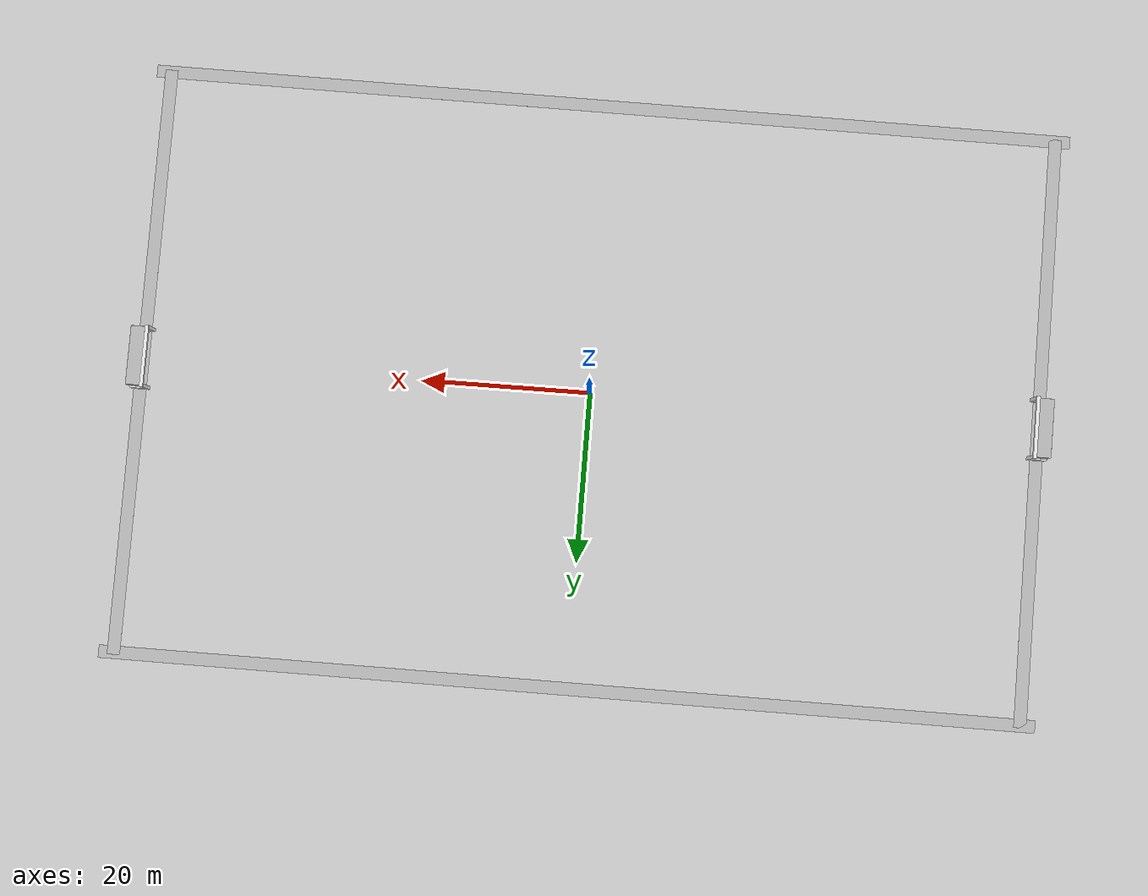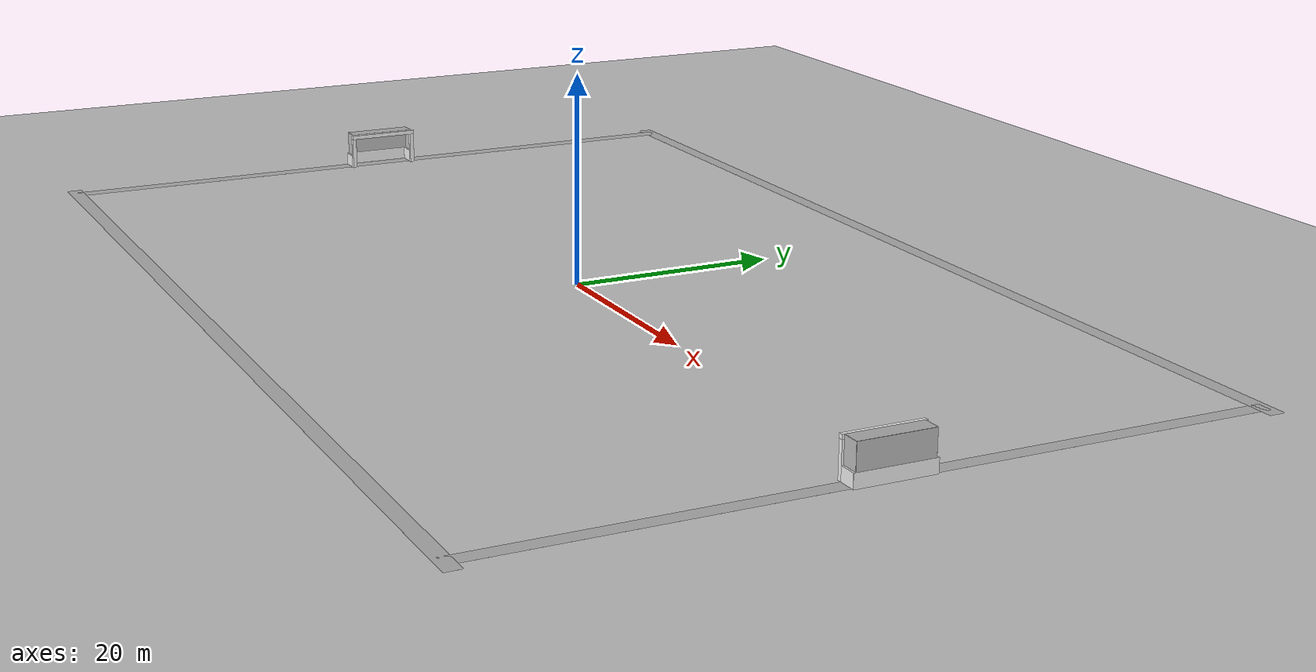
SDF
<sdf version="1.6">
  <world name="default">

<plugin name="gazebo_ros_state" filename="libgazebo_ros_state.so">
  <ros>
    <namespace>/gazebo</namespace>
  </ros>
</plugin>

  <include>
  <uri>model://MSL_models15/RoboCup15_MSL_Field</uri>
  <pose>0 0 0 0 0 0</pose> <!-- x y z roll pitch yaw -->
  </include>
      <!-- Goal 1 -->
    <include>
      <name>goal1</name>
      <uri>model://MSL_models15/RoboCup15_MSL_Goal</uri>
      <pose>52.5 0 0.0 0 0 0</pose>
    </include>

    <!-- Goal 2 -->
    <include>
      <name>goal2</name>
      <uri>model://MSL_models15/RoboCup15_MSL_Goal</uri>
      <pose>-52.5 0 0.0 0 0 3.14</pose>
    </include>
  </world>
</sdf>

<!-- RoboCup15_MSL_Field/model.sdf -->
<sdf version="1.4">
  <model name="RoboCup15_MSL_Field">
    <static>true</static>

    <link name="field">
      <pose>0 0 0.01 0 0 0</pose>

      <!-- Main Field Collision -->
      <collision name="collision">
        <geometry>
          <plane>
            <normal>0 0 1</normal>
            <size>105 68</size>
          </plane>
        </geometry>
        <surface>
          <friction>
            <ode>
              <mu>100</mu>
              <mu2>50</mu2>
            </ode>
          </friction>
        </surface>
      </collision>

      <!-- Main Field Visual -->
      <visual name="carpet">
        <cast_shadows>false</cast_shadows>
        <geometry>
          <plane>
            <normal>0 0 1</normal>
            <size>105 68</size>
          </plane>
        </geometry>
        <material>
          <script>
            <uri>model://MSL_models15/RoboCup15_MSL_Field/materials/scripts/</uri>
            <uri>model://MSL_models15/RoboCup15_MSL_Field/materials/textures/</uri>
            <name>RoboCup/Carpet</name>
          </script>
        </material>
      </visual>

      <!-- Top Border -->
      <visual name="base1">
        <pose>0 34.75 0.01 0 0 0</pose>
        <cast_shadows>false</cast_shadows>
        <geometry>
          <plane>
            <normal>0 0 1</normal>
            <size>110 1.5</size>
          </plane>
        </geometry>
        <material>
          <script>
            <uri>model://MSL_models15/RoboCup15_MSL_Field/materials/scripts/</uri>
            <uri>model://MSL_models15/RoboCup15_MSL_Field/materials/textures/</uri>
            <name>RoboCup/FieldBorder</name>
          </script>
        </material>
      </visual>

      <!-- Bottom Border -->
      <visual name="base2">
        <pose>0 -34.75 0.01 0 0 0</pose>
        <cast_shadows>false</cast_shadows>
        <geometry>
          <plane>
            <normal>0 0 1</normal>
            <size>110 1.5</size>
          </plane>
        </geometry>
        <material>
          <script>
            <uri>model://MSL_models15/RoboCup15_MSL_Field/materials/scripts/</uri>
            <uri>model://MSL_models15/RoboCup15_MSL_Field/materials/textures/</uri>
            <name>RoboCup/FieldBorder</name>
          </script>
        </material>
      </visual>

      <!-- Right Border -->
      <visual name="base3">
        <pose>53.25 0 0.01 0 0 0</pose>
        <cast_shadows>false</cast_shadows>
        <geometry>
          <plane>
            <normal>0 0 1</normal>
            <size>1.5 70</size>
          </plane>
        </geometry>
        <material>
          <script>
            <uri>model://MSL_models15/RoboCup15_MSL_Field/materials/scripts/</uri>
            <uri>model://MSL_models15/RoboCup15_MSL_Field/materials/textures/</uri>
            <name>RoboCup/FieldBorder</name>
          </script>
        </material>
      </visual>

      <!-- Left Border -->
      <visual name="base4">
        <pose>-53.25 0 0.01 0 0 0</pose>
        <cast_shadows>false</cast_shadows>
        <geometry>
          <plane>
            <normal>0 0 1</normal>
            <size>1.5 70</size>
          </plane>
        </geometry>
        <material>
          <script>
            <uri>model://MSL_models15/RoboCup15_MSL_Field/materials/scripts/</uri>
            <uri>model://MSL_models15/RoboCup15_MSL_Field/materials/textures/</uri>
            <name>RoboCup/FieldBorder</name>
          </script>
        </material>
      </visual>

    </link>
  </model>
</sdf>

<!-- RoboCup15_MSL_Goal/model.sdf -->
<sdf version="1.4">
  <model name="RoboCup15_MSL_Goal">
    <static>true</static>

    <link name="left_post">
      <pose>-0.203 3.453 1.625 0 0 0</pose>
      <collision name="collision">
        <geometry><box><size>0.41 0.41 3.25</size></box></geometry>
      </collision>
      <visual name="visual">
        <geometry><box><size>0.41 0.41 3.25</size></box></geometry>
        <material><script><uri>model://MSL_models15/RoboCup15_MSL_Goal/materials/scripts/gazebo.material</uri><name>Gazebo/White</name></script></material>
      </visual>
    </link>

    <link name="right_post">
      <pose>-0.203 -3.453 1.625 0 0 0</pose>
      <collision name="collision">
        <geometry><box><size>0.41 0.41 3.25</size></box></geometry>
      </collision>
      <visual name="visual">
        <geometry><box><size>0.41 0.41 3.25</size></box></geometry>
        <material><script><uri>model://MSL_models15/RoboCup15_MSL_Goal/materials/scripts/gazebo.material</uri><name>Gazebo/White</name></script></material>
      </visual>
    </link>

    <link name="crossbar">
      <pose>-0.203 0 3.453 0 0 0</pose>
      <collision name="collision">
        <geometry><box><size>0.41 7.32 0.41</size></box></geometry>
      </collision>
      <visual name="visual">
        <geometry><box><size>0.41 7.32 0.41</size></box></geometry>
        <material><script><uri>model://MSL_models15/RoboCup15_MSL_Goal/materials/scripts/gazebo.material</uri><name>Gazebo/White</name></script></material>
      </visual>
    </link>

    <link name="left_support_horiz_lower">
      <pose>0.813 3.453 0.650 0 0 0</pose>
      <collision name="collision">
        <geometry><box><size>1.63 0.41 1.30</size></box></geometry>
      </collision>
      <visual name="visual">
        <geometry><box><size>1.63 0.41 1.30</size></box></geometry>
        <material><script><uri>model://MSL_models15/RoboCup15_MSL_Goal/materials/scripts/gazebo.material</uri><name>Gazebo/White</name></script></material>
      </visual>
    </link>

    <link name="right_support_horiz_lower">
      <pose>0.813 -3.453 0.650 0 0 0</pose>
      <collision name="collision">
        <geometry><box><size>1.63 0.41 1.30</size></box></geometry>
      </collision>
      <visual name="visual">
        <geometry><box><size>1.63 0.41 1.30</size></box></geometry>
        <material><script><uri>model://MSL_models15/RoboCup15_MSL_Goal/materials/scripts/gazebo.material</uri><name>Gazebo/White</name></script></material>
      </visual>
    </link>

    <link name="center_support_horiz_lower">
      <pose>1.658 0 0.650 0 0 0</pose>
      <collision name="collision">
        <geometry><box><size>0.065 7.32 1.30</size></box></geometry>
      </collision>
      <visual name="visual">
        <geometry><box><size>0.065 7.32 1.30</size></box></geometry>
        <material><script><uri>model://MSL_models15/RoboCup15_MSL_Goal/materials/scripts/gazebo.material</uri><name>Gazebo/White</name></script></material>
      </visual>
    </link>

    <link name="center_net">
      <pose>1.625 0 2.478 0 0 0</pose>
      <collision name="collision">
        <geometry><box><size>0.033 6.91 2.36</size></box></geometry>
      </collision>
      <visual name="visual">
        <geometry><box><size>0.033 6.91 2.36</size></box></geometry>
        <material>
          <script>
            <uri>model://MSL_models15/RoboCup15_MSL_Goal/materials/scripts/</uri>
            <uri>model://MSL_models15/RoboCup15_MSL_Goal/materials/textures/</uri>
            <name>RoboCup/Net</name>
          </script>
        </material>
      </visual>
    </link>

    <link name="left_net">
      <pose>0.813 3.453 2.478 0 0 0</pose>
      <collision name="collision">
        <geometry><box><size>1.63 0.033 2.36</size></box></geometry>
      </collision>
      <visual name="visual">
        <geometry><box><size>1.63 0.033 2.36</size></box></geometry>
        <material>
          <script>
            <uri>model://MSL_models15/RoboCup15_MSL_Goal/materials/scripts/</uri>
            <uri>model://MSL_models15/RoboCup15_MSL_Goal/materials/textures/</uri>
            <name>RoboCup/Net</name>
          </script>
        </material>
      </visual>
    </link>

    <link name="right_net">
      <pose>0.813 -3.453 2.478 0 0 0</pose>
      <collision name="collision">
        <geometry><box><size>1.63 0.033 2.36</size></box></geometry>
      </collision>
      <visual name="visual">
        <geometry><box><size>1.63 0.033 2.36</size></box></geometry>
        <material>
          <script>
            <uri>model://MSL_models15/RoboCup15_MSL_Goal/materials/scripts/</uri>
            <uri>model://MSL_models15/RoboCup15_MSL_Goal/materials/textures/</uri>
            <name>RoboCup/Net</name>
          </script>
        </material>
      </visual>
    </link>

    <link name="upper_net">
      <pose>0.813 0 3.656 0 0 0</pose>
      <collision name="collision">
        <geometry><box><size>1.63 6.91 0.033</size></box></geometry>
      </collision>
      <visual name="visual">
        <geometry><box><size>1.63 6.91 0.033</size></box></geometry>
        <material>
          <script>
            <uri>model://MSL_models15/RoboCup15_MSL_Goal/materials/scripts/</uri>
            <uri>model://MSL_models15/RoboCup15_MSL_Goal/materials/textures/</uri>
            <name>RoboCup/Net</name>
          </script>
        </material>
      </visual>
    </link>

  </model>
</sdf>
